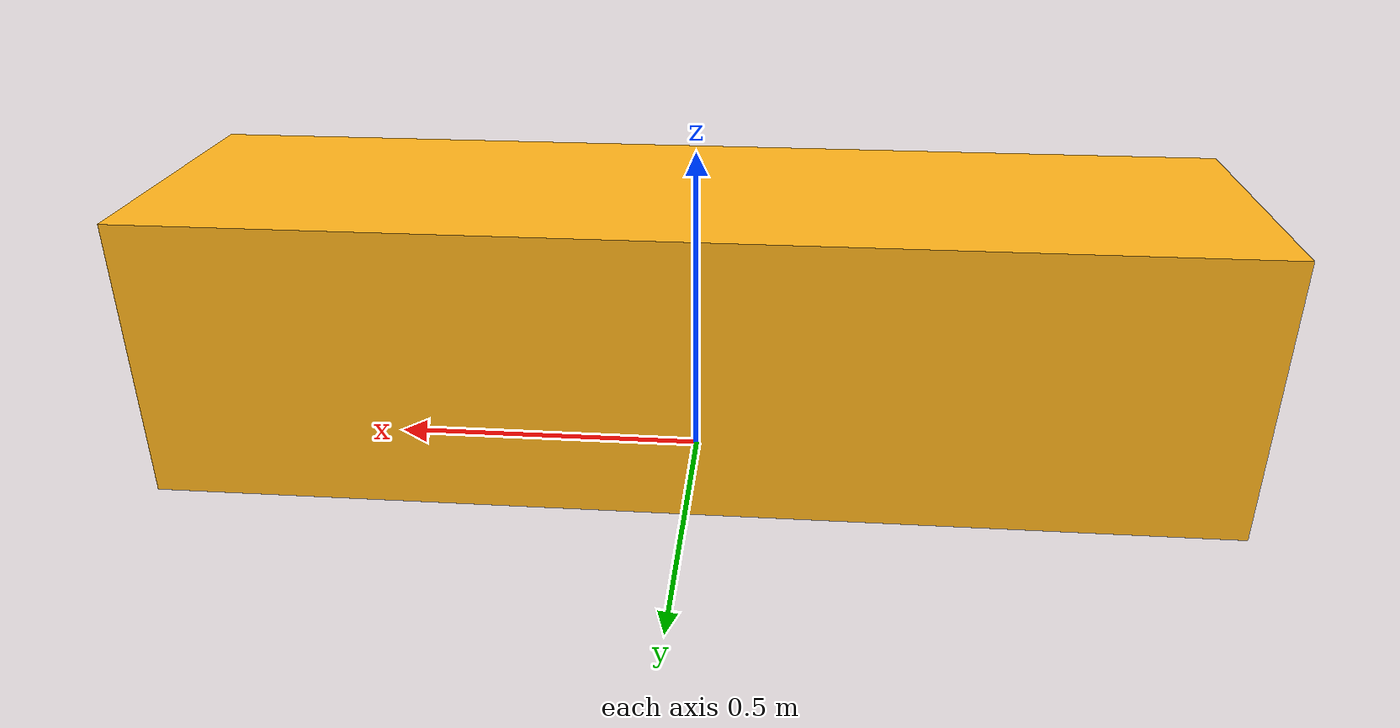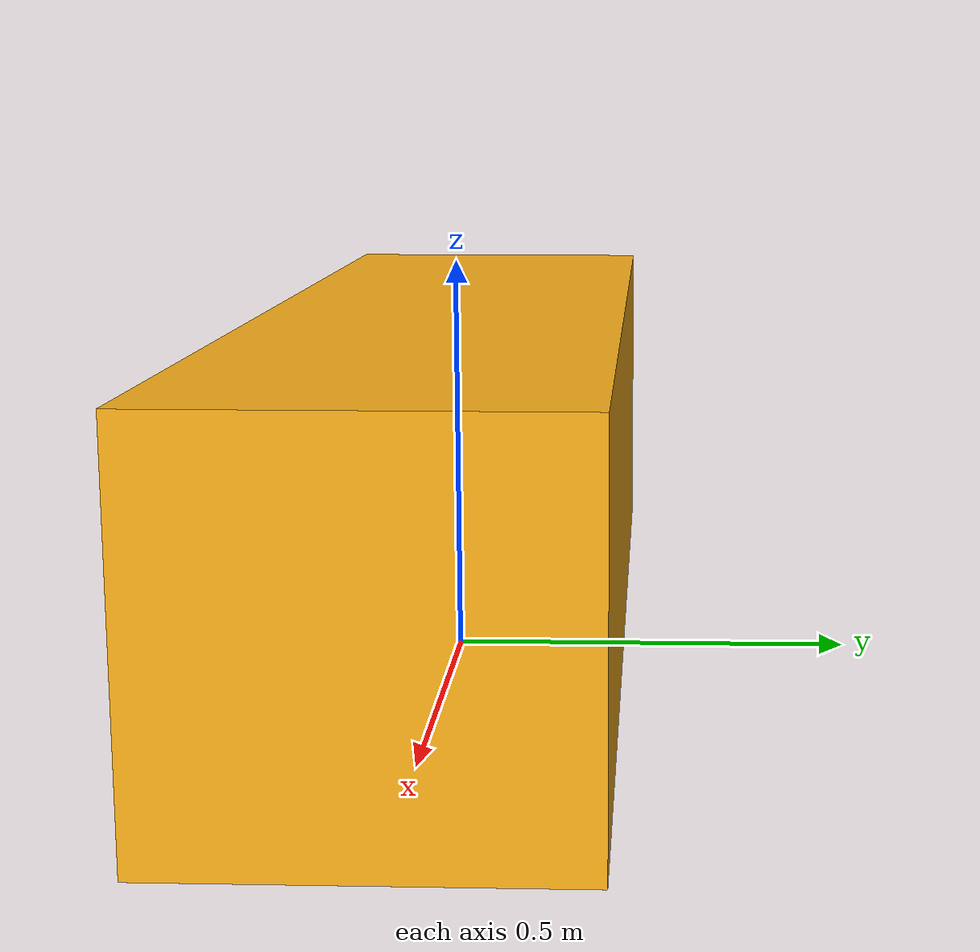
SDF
<?xml version='1.0'?>
<sdf version='1.6'>
  <model name='rai_tv_table'>
    <link name='link_2'>
      <pose frame=''>0 0 0 0 -0 0</pose>
      <visual name='visual'>
        <pose frame=''>0 0 0.22 1.57 -0 0</pose>
        <geometry>
          <mesh>
             <uri>model://rai_tv_table/meshes/rai_tv_table.STL</uri>
            <scale>1 1 1</scale>
          </mesh>
        </geometry>
        <material>
          <lighting>1</lighting>
          <script>
            <uri>file://media/materials/scripts/gazebo.material</uri>
            <name>Gazebo/Grey</name>
          </script>
          <ambient>1 0.7 0.1 1</ambient>
          <diffuse>1 0.7 0.1 1</diffuse>
          <specular>0.01 0.01 0.01 1</specular>
          <emissive>0 0 0 1</emissive>
          <shader type='vertex'>
            <normal_map>__default__</normal_map>
          </shader>
        </material>
        <cast_shadows>1</cast_shadows>
        <transparency>0</transparency>
      </visual>
      <collision name='collision'>
        <pose frame=''>0 -0.01 0.22 1.57 -0 0</pose>
        <geometry>
          <box>
            <size>1.65 0.44 0.45</size>
          </box>
        </geometry>
      </collision>
    </link>
    <static>1</static>
    <allow_auto_disable>1</allow_auto_disable>
  </model>
</sdf>
